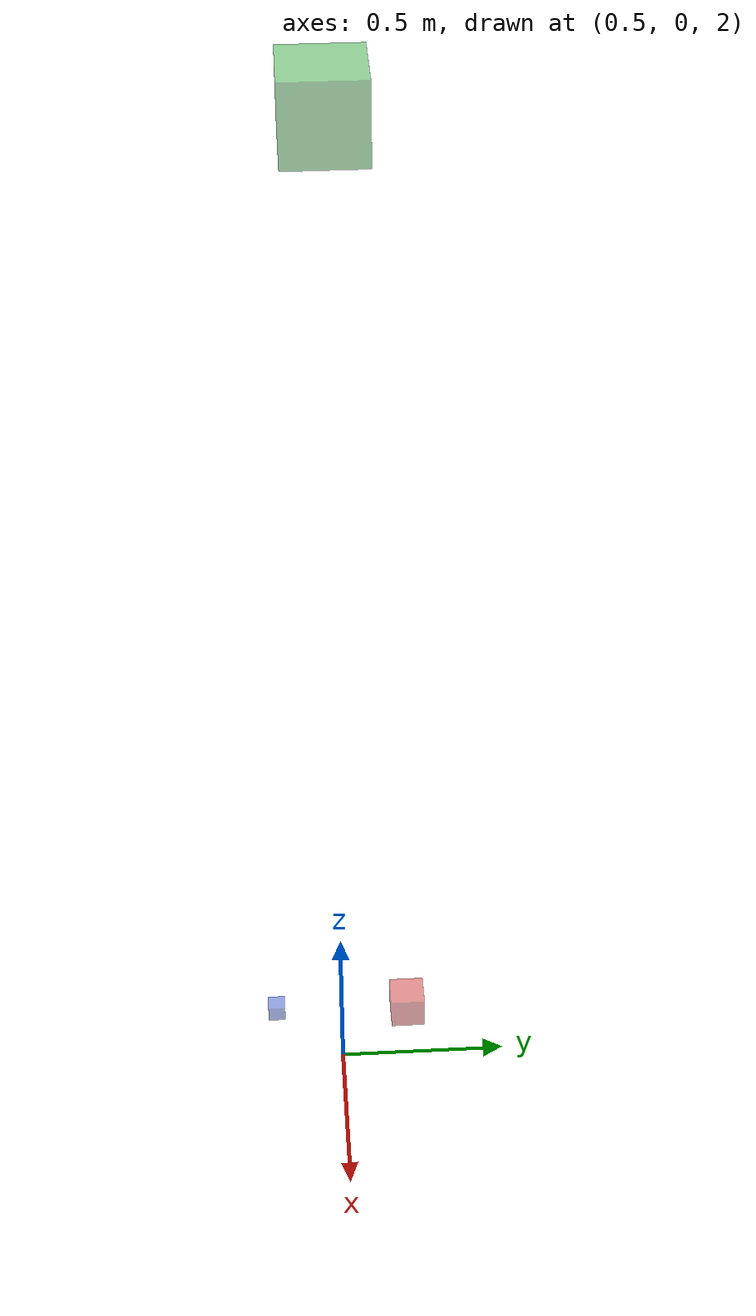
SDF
<sdf version="1.4">
 <world name="default">
  <include><uri>model://ground_plane</uri></include>
  <include><uri>model://sun</uri></include>
  <model name="box1S">
   <pose>0.5 -0.2 2.2 0 0 0</pose>
   <link name="link">
    <pose>0 0 0.025 0 0 0</pose>
    <inertial>
     <mass>0.5</mass>
     <inertia>
      <ixx>2.3541666666666672e-05</ixx>
      <ixy>0</ixy>
      <ixz>0</ixz>
      <iyy>2.3541666666666672e-05</iyy>
      <iyz>0</iyz>
      <izz>2.3541666666666672e-05</izz>
     </inertia>
    </inertial>
    <collision name="collision">
     <geometry><box><size>0.05 0.05 0.05</size></box></geometry>
     <surface>
      <contact>
       <poissons_ratio>0.347</poissons_ratio>
       <elastic_modulus>8.8e+09</elastic_modulus>
       <ode><kp>100000</kp><kd>1</kd><max_vel>1.0</max_vel><min_depth>0.001</min_depth></ode>
      </contact>
      <friction>
       <torsional>
        <coefficient>1.0</coefficient>
        <use_patch_radius>0</use_patch_radius>
        <surface_radius>0.05</surface_radius>
       </torsional>
      </friction>
     </surface>
    </collision>
    <visual name="visual">
     <geometry><box><size>0.05 0.05 0.05</size></box></geometry>
     <material>
      <script><uri>file://media/materials/scripts/gazebo.material</uri><name>Gazebo/BlueTransparent</name></script>
     </material>
    </visual>
   </link>
  </model>
  <model name="box2M">
   <pose>0.5 -0 5.2 0 0 0</pose>
   <link name="link">
    <pose>0 0 0.025 0 0 0</pose>
    <inertial>
     <mass>0.75</mass>
     <inertia>
      <ixx>2.3541666666666672e-05</ixx>
      <ixy>0</ixy>
      <ixz>0</ixz>
      <iyy>2.3541666666666672e-05</iyy>
      <iyz>0</iyz>
      <izz>2.3541666666666672e-05</izz>
     </inertia>
    </inertial>
    <collision name="collision">
     <geometry><box><size>0.075 0.075 0.075</size></box></geometry>
     <surface>
      <contact>
       <poissons_ratio>0.347</poissons_ratio>
       <elastic_modulus>8.8e+09</elastic_modulus>
       <ode><kp>100000</kp><kd>1</kd><max_vel>1.0</max_vel><min_depth>0.001</min_depth></ode>
      </contact>
      <friction>
       <torsional>
        <coefficient>1.0</coefficient>
        <use_patch_radius>0</use_patch_radius>
        <surface_radius>0.05</surface_radius>
       </torsional>
      </friction>
     </surface>
    </collision>
    <visual name="visual">
     <geometry><box><size>0.075 0.075 0.075</size></box></geometry>
     <material>
      <script><uri>file://media/materials/scripts/gazebo.material</uri><name>Gazebo/BlackTransparent</name></script>
     </material>
    </visual>
   </link>
  </model>
  <model name="box3L">
   <pose>0.5 0.2 2.2 0 0 0</pose>
   <link name="link">
    <pose>0 0 0.025 0 0 0</pose>
    <inertial>
     <mass>1.0</mass>
     <inertia>
      <ixx>2.3541666666666672e-05</ixx>
      <ixy>0</ixy>
      <ixz>0</ixz>
      <iyy>2.3541666666666672e-05</iyy>
      <iyz>0</iyz>
      <izz>2.3541666666666672e-05</izz>
     </inertia>
    </inertial>
    <collision name="collision">
     <geometry><box><size>0.1 0.1 0.1</size></box></geometry>
     <surface>
      <contact>
       <poissons_ratio>0.347</poissons_ratio>
       <elastic_modulus>8.8e+09</elastic_modulus>
       <ode><kp>100000</kp><kd>1</kd><max_vel>1.0</max_vel><min_depth>0.001</min_depth></ode>
      </contact>
      <friction>
       <torsional>
        <coefficient>1.0</coefficient>
        <use_patch_radius>0</use_patch_radius>
        <surface_radius>0.05</surface_radius>
       </torsional>
      </friction>
     </surface>
    </collision>
    <visual name="visual">
     <geometry><box><size>0.1 0.1 0.1</size></box></geometry>
     <material>
      <script><uri>file://media/materials/scripts/gazebo.material</uri><name>Gazebo/RedTransparent</name></script>
     </material>
    </visual>
   </link>
  </model>
  <model name="box4LX">
   <pose>0.7 0 5.2 0 0 0</pose>
   <link name="link">
    <pose>0 0 0.025 0 0 0</pose>
    <inertial>
     <mass>2</mass>
     <inertia>
      <ixx>2.3541666666666672e-05</ixx>
      <ixy>0</ixy>
      <ixz>0</ixz>
      <iyy>2.3541666666666672e-05</iyy>
      <iyz>0</iyz>
      <izz>2.3541666666666672e-05</izz>
     </inertia>
    </inertial>
    <collision name="collision">
     <geometry><box><size>0.2 0.2 0.2</size></box></geometry>
     <surface>
      <contact>
       <poissons_ratio>0.347</poissons_ratio>
       <elastic_modulus>8.8e+09</elastic_modulus>
       <ode><kp>100000</kp><kd>1</kd><max_vel>1.0</max_vel><min_depth>0.001</min_depth></ode>
      </contact>
      <friction>
       <torsional>
        <coefficient>1.0</coefficient>
        <use_patch_radius>0</use_patch_radius>
        <surface_radius>0.05</surface_radius>
       </torsional>
      </friction>
     </surface>
    </collision>
    <visual name="visual">
     <geometry><box><size>0.2 0.2 0.2</size></box></geometry>
     <material>
      <script><uri>file://media/materials/scripts/gazebo.material</uri><name>Gazebo/GreenTransparent</name></script>
     </material>
    </visual>
   </link>
  </model>
  <physics type="ode" update_rate="100.0">
   <max_step_size>0.001</max_step_size>
   <real_time_factor>1</real_time_factor>
   <real_time_update_rate>1000</real_time_update_rate>
   <gravity>0 0 -9.81</gravity>
  </physics>
 </world>
</sdf>
